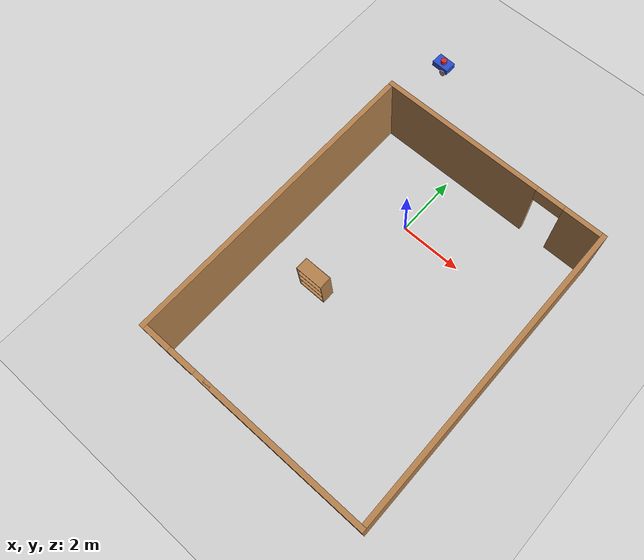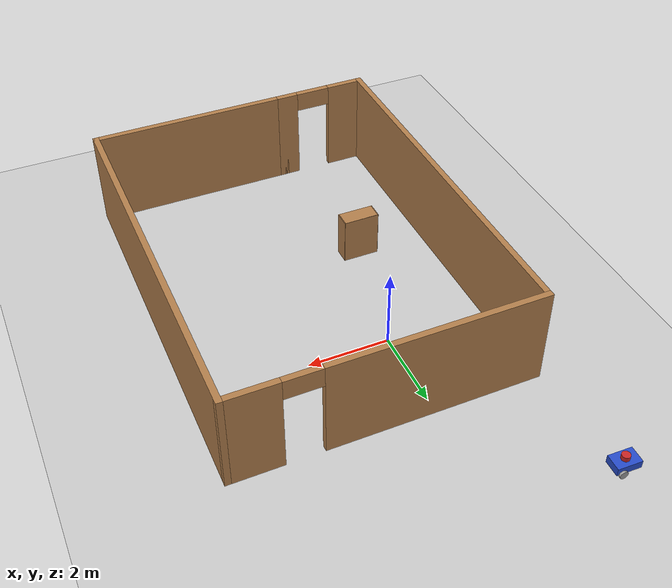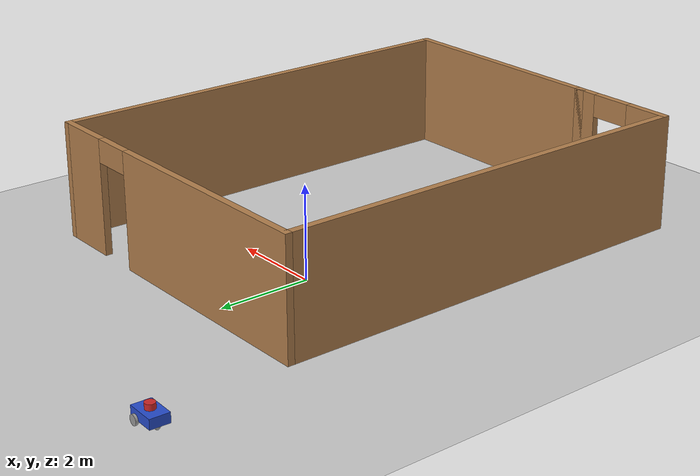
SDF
<sdf version="1.7">
 <world name="default">
  <light name="sun" type="directional">
   <pose>0 0 10 0 -0 0</pose>
   <diffuse>0.8 0.8 0.8 1</diffuse>
   <specular>0.2 0.2 0.2 1</specular>
   <attenuation>
    <range>1000</range>
    <constant>0.9</constant>
    <linear>0.01</linear>
    <quadratic>0.001</quadratic>
   </attenuation>
   <direction>-0.5 0.1 -0.9</direction>
   <spot><inner_angle>0</inner_angle><outer_angle>0</outer_angle><falloff>0</falloff></spot>
  </light>
  <model name="ground_plane">
   <static>1</static>
   <link name="link">
    <collision name="collision">
     <geometry><plane><normal>0 0 1</normal><size>100 100</size></plane></geometry>
     <surface><friction><ode><mu>100</mu><mu2>50</mu2></ode></friction></surface>
    </collision>
    <visual name="visual">
     <cast_shadows>0</cast_shadows>
     <geometry><plane><normal>0 0 1</normal><size>100 100</size></plane></geometry>
     <material>
      <script><uri>file://media/materials/scripts/gazebo.material</uri><name>Gazebo/Grey</name></script>
     </material>
    </visual>
   </link>
  </model>
  <gravity>0 0 -9.8</gravity>
  <magnetic_field>6e-06 2.3e-05 -4.2e-05</magnetic_field>
  <atmosphere type="adiabatic"/>
  <physics type="ode">
   <max_step_size>0.001</max_step_size>
   <real_time_factor>1</real_time_factor>
   <real_time_update_rate>1000</real_time_update_rate>
  </physics>
  <scene><ambient>0.4 0.4 0.4 1</ambient><background>0.7 0.7 0.7 1</background><shadows>1</shadows></scene>
  <audio><device>default</device></audio>
  <spherical_coordinates>
   <surface_model>EARTH_WGS84</surface_model>
   <latitude_deg>0</latitude_deg>
   <longitude_deg>0</longitude_deg>
   <elevation>0</elevation>
   <heading_deg>0</heading_deg>
  </spherical_coordinates>
  <model name="bookshelf">
   <static>1</static>
   <link name="link">
    <inertial><mass>1</mass></inertial>
    <collision name="back">
     <pose>0 0.005 0.6 0 -0 0</pose>
     <geometry><box><size>0.9 0.01 1.2</size></box></geometry>
    </collision>
    <visual name="visual1">
     <pose>0 0.005 0.6 0 -0 0</pose>
     <geometry><box><size>0.9 0.01 1.2</size></box></geometry>
     <material>
      <script><uri>file://media/materials/scripts/gazebo.material</uri><name>Gazebo/Wood</name></script>
     </material>
    </visual>
    <collision name="left_side">
     <pose>0.45 -0.195 0.6 0 -0 0</pose>
     <geometry><box><size>0.02 0.4 1.2</size></box></geometry>
    </collision>
    <visual name="visual2">
     <pose>0.45 -0.195 0.6 0 -0 0</pose>
     <geometry><box><size>0.02 0.4 1.2</size></box></geometry>
     <material>
      <script><uri>file://media/materials/scripts/gazebo.material</uri><name>Gazebo/Wood</name></script>
     </material>
    </visual>
    <collision name="right_side">
     <pose>-0.45 -0.195 0.6 0 -0 0</pose>
     <geometry><box><size>0.02 0.4 1.2</size></box></geometry>
    </collision>
    <visual name="visual3">
     <pose>-0.45 -0.195 0.6 0 -0 0</pose>
     <geometry><box><size>0.02 0.4 1.2</size></box></geometry>
     <material>
      <script><uri>file://media/materials/scripts/gazebo.material</uri><name>Gazebo/Wood</name></script>
     </material>
    </visual>
    <collision name="bottom">
     <pose>0 -0.195 0.03 0 -0 0</pose>
     <geometry><box><size>0.88 0.4 0.06</size></box></geometry>
    </collision>
    <visual name="visual4">
     <pose>0 -0.195 0.03 0 -0 0</pose>
     <geometry><box><size>0.88 0.4 0.06</size></box></geometry>
     <material>
      <script><uri>file://media/materials/scripts/gazebo.material</uri><name>Gazebo/Wood</name></script>
     </material>
    </visual>
    <collision name="top">
     <pose>0 -0.195 1.19 0 -0 0</pose>
     <geometry><box><size>0.88 0.4 0.02</size></box></geometry>
    </collision>
    <visual name="visual5">
     <pose>0 -0.195 1.19 0 -0 0</pose>
     <geometry><box><size>0.88 0.4 0.02</size></box></geometry>
     <material>
      <script><uri>file://media/materials/scripts/gazebo.material</uri><name>Gazebo/Wood</name></script>
     </material>
    </visual>
    <collision name="low_shelf">
     <pose>0 -0.195 0.43 0 -0 0</pose>
     <geometry><box><size>0.88 0.4 0.02</size></box></geometry>
    </collision>
    <visual name="visual6">
     <pose>0 -0.195 0.43 0 -0 0</pose>
     <geometry><box><size>0.88 0.4 0.02</size></box></geometry>
     <material>
      <script><uri>file://media/materials/scripts/gazebo.material</uri><name>Gazebo/Wood</name></script>
     </material>
    </visual>
    <collision name="high_shelf">
     <pose>0 -0.195 0.8 0 -0 0</pose>
     <geometry><box><size>0.88 0.4 0.02</size></box></geometry>
    </collision>
    <visual name="visual7">
     <pose>0 -0.195 0.8 0 -0 0</pose>
     <geometry><box><size>0.88 0.4 0.02</size></box></geometry>
     <material>
      <script><uri>file://media/materials/scripts/gazebo.material</uri><name>Gazebo/Wood</name></script>
     </material>
    </visual>
   </link>
   <pose>-0.686014 -2.96296 0.080918 0 -0 0</pose>
  </model>
  <model name="first_robot">
   <pose>1.10588 -2.46426 0 0 -0 0</pose>
   <link name="Wall_15">
    <collision name="Wall_15_Collision">
     <geometry><box><size>9.75 0.15 2.5</size></box></geometry>
     <pose>0 0 1.25 0 -0 0</pose>
    </collision>
    <visual name="Wall_15_Visual">
     <pose>0 0 1.25 0 -0 0</pose>
     <geometry><box><size>9.75 0.15 2.5</size></box></geometry>
     <material>
      <script><uri>file://media/materials/scripts/gazebo.material</uri><name>Gazebo/Wood</name></script>
      <ambient>1 1 1 1</ambient>
     </material>
     <meta><layer>0</layer></meta>
    </visual>
    <pose>-3.675 -0 0 0 -0 -1.5708</pose>
   </link>
   <link name="Wall_16">
    <pose>-2.5 -4.8 0 0 -0 0</pose>
    <visual name="Wall_16_Visual_0">
     <pose>-0.735127 0 1.25 0 -0 0</pose>
     <geometry><box><size>1.02975 0.15 2.5</size></box></geometry>
     <material>
      <script><uri>file://media/materials/scripts/gazebo.material</uri><name>Gazebo/Wood</name></script>
      <ambient>1 1 1 1</ambient>
     </material>
     <meta><layer>0</layer></meta>
    </visual>
    <collision name="Wall_16_Collision_0">
     <geometry><box><size>1.02975 0.15 2.5</size></box></geometry>
     <pose>-0.735127 0 1.25 0 -0 0</pose>
    </collision>
    <visual name="Wall_16_Visual_1">
     <pose>0.964873 0 1.25 0 -0 0</pose>
     <geometry><box><size>0.570253 0.15 2.5</size></box></geometry>
     <material>
      <script><uri>file://media/materials/scripts/gazebo.material</uri><name>Gazebo/Wood</name></script>
      <ambient>1 1 1 1</ambient>
     </material>
     <meta><layer>0</layer></meta>
    </visual>
    <collision name="Wall_16_Collision_1">
     <geometry><box><size>0.570253 0.15 2.5</size></box></geometry>
     <pose>0.964873 0 1.25 0 -0 0</pose>
    </collision>
    <visual name="Wall_16_Visual_2">
     <pose>0.229747 0 2.25 0 -0 0</pose>
     <geometry><box><size>0.9 0.15 0.5</size></box></geometry>
     <material>
      <script><uri>file://media/materials/scripts/gazebo.material</uri><name>Gazebo/Wood</name></script>
      <ambient>1 1 1 1</ambient>
     </material>
     <meta><layer>0</layer></meta>
    </visual>
    <collision name="Wall_16_Collision_2">
     <geometry><box><size>0.9 0.15 0.5</size></box></geometry>
     <pose>0.229747 0 2.25 0 -0 0</pose>
    </collision>
   </link>
   <link name="Wall_7">
    <collision name="Wall_7_Collision">
     <geometry><box><size>5.25 0.15 2.5</size></box></geometry>
     <pose>0 0 1.25 0 -0 0</pose>
    </collision>
    <visual name="Wall_7_Visual">
     <pose>0 0 1.25 0 -0 0</pose>
     <geometry><box><size>5.25 0.15 2.5</size></box></geometry>
     <material>
      <script><uri>file://media/materials/scripts/gazebo.material</uri><name>Gazebo/Wood</name></script>
      <ambient>1 1 1 1</ambient>
     </material>
     <meta><layer>0</layer></meta>
    </visual>
    <pose>1.125 -4.8 0 0 -0 0</pose>
   </link>
   <link name="Wall_8">
    <collision name="Wall_8_Collision">
     <geometry><box><size>9.75 0.15 2.5</size></box></geometry>
     <pose>0 0 1.25 0 -0 0</pose>
    </collision>
    <visual name="Wall_8_Visual">
     <pose>0 0 1.25 0 -0 0</pose>
     <geometry><box><size>9.75 0.15 2.5</size></box></geometry>
     <material>
      <script><uri>file://media/materials/scripts/gazebo.material</uri><name>Gazebo/Wood</name></script>
      <ambient>1 1 1 1</ambient>
     </material>
     <meta><layer>0</layer></meta>
    </visual>
    <pose>3.675 -0 0 0 -0 1.5708</pose>
   </link>
   <link name="Wall_9">
    <pose>-0 4.8 0 0 -0 3.14159</pose>
    <visual name="Wall_9_Visual_0">
     <pose>-3.0768 0 1.25 0 -0 0</pose>
     <geometry><box><size>1.3464 0.15 2.5</size></box></geometry>
     <material>
      <script><uri>file://media/materials/scripts/gazebo.material</uri><name>Gazebo/Wood</name></script>
      <ambient>1 1 1 1</ambient>
     </material>
     <meta><layer>0</layer></meta>
    </visual>
    <collision name="Wall_9_Collision_0">
     <geometry><box><size>1.3464 0.15 2.5</size></box></geometry>
     <pose>-3.0768 0 1.25 0 -0 0</pose>
    </collision>
    <visual name="Wall_9_Visual_1">
     <pose>1.1232 0 1.25 0 -0 0</pose>
     <geometry><box><size>5.2536 0.15 2.5</size></box></geometry>
     <material>
      <script><uri>file://media/materials/scripts/gazebo.material</uri><name>Gazebo/Wood</name></script>
      <ambient>1 1 1 1</ambient>
     </material>
     <meta><layer>0</layer></meta>
    </visual>
    <collision name="Wall_9_Collision_1">
     <geometry><box><size>5.2536 0.15 2.5</size></box></geometry>
     <pose>1.1232 0 1.25 0 -0 0</pose>
    </collision>
    <visual name="Wall_9_Visual_2">
     <pose>-1.9536 0 2.25 0 -0 0</pose>
     <geometry><box><size>0.9 0.15 0.5</size></box></geometry>
     <material>
      <script><uri>file://media/materials/scripts/gazebo.material</uri><name>Gazebo/Wood</name></script>
      <ambient>1 1 1 1</ambient>
     </material>
     <meta><layer>0</layer></meta>
    </visual>
    <collision name="Wall_9_Collision_2">
     <geometry><box><size>0.9 0.15 0.5</size></box></geometry>
     <pose>-1.9536 0 2.25 0 -0 0</pose>
    </collision>
   </link>
   <static>1</static>
  </model>
  <model name="my_robot">
   <link name="base_footprint">
    <inertial>
     <pose>0.015873 0 0.200794 0 -0 0</pose>
     <mass>6.3</mass>
     <inertia>
      <ixx>0.699753</ixx>
      <ixy>0</ixy>
      <ixz>0.0150794</ixz>
      <iyy>0.922325</iyy>
      <iyz>-1.17843e-18</iyz>
      <izz>0.365586</izz>
     </inertia>
    </inertial>
    <collision name="base_footprint_fixed_joint_lump__base_link_collision">
     <pose>0 0 0.2 0 -0 0</pose>
     <geometry><box><size>0.6 0.4 0.2</size></box></geometry>
    </collision>
    <collision name="base_footprint_fixed_joint_lump__caster_wheel_link_collision_1">
     <pose>0.2 0 0.05 0 -0 0</pose>
     <geometry><sphere><radius>0.05</radius></sphere></geometry>
     <surface><friction><ode><mu>0.1</mu><mu2>0.1</mu2></ode></friction></surface>
    </collision>
    <collision name="base_footprint_fixed_joint_lump__lidar_link_collision_2">
     <pose>0 0 0.3 0 -0 0</pose>
     <geometry><cylinder><length>0.12</length><radius>0.1</radius></cylinder></geometry>
    </collision>
    <visual name="base_footprint_fixed_joint_lump__base_link_visual">
     <pose>0 0 0.2 0 -0 0</pose>
     <geometry><box><size>0.6 0.4 0.2</size></box></geometry>
     <material>
      <script><name>Gazebo/Blue</name><uri>file://media/materials/scripts/gazebo.material</uri></script>
     </material>
    </visual>
    <visual name="base_footprint_fixed_joint_lump__caster_wheel_link_visual_1">
     <pose>0.2 0 0.05 0 -0 0</pose>
     <geometry><sphere><radius>0.05</radius></sphere></geometry>
     <material>
      <script><name>Gazebo/Grey</name><uri>file://media/materials/scripts/gazebo.material</uri></script>
     </material>
    </visual>
    <visual name="base_footprint_fixed_joint_lump__lidar_link_visual_2">
     <pose>0 0 0.36 0 -0 0</pose>
     <geometry><cylinder><length>0.12</length><radius>0.1</radius></cylinder></geometry>
     <material>
      <script><name>Gazebo/Red</name><uri>file://media/materials/scripts/gazebo.material</uri></script>
     </material>
    </visual>
    <sensor name="VLP16" type="ray">
     <visualize>0</visualize>
     <update_rate>10</update_rate>
     <ray>
      <scan>
       <horizontal>
        <samples>360</samples>
        <resolution>1</resolution>
        <min_angle>-3.14159</min_angle>
        <max_angle>3.14159</max_angle>
       </horizontal>
       <vertical>
        <samples>16</samples>
        <resolution>1</resolution>
        <min_angle>-0.261799</min_angle>
        <max_angle>0.261799</max_angle>
       </vertical>
      </scan>
      <range><min>1</min><max>140</max><resolution>0.001</resolution></range>
      <noise><type>gaussian</type><mean>0</mean><stddev>0</stddev></noise>
     </ray>
     <plugin name="my_ray_sensor_plugin" filename="libgazebo_ros_ray_sensor.so">
      <ros><namespace>/ray</namespace><remapping>~/out:=pointcloud2</remapping></ros>
      <output_type>sensor_msgs/PointCloud2</output_type>
      <min_intensity>100.0</min_intensity>
      <frame_name>lidar_link</frame_name>
     </plugin>
     <pose>0 0 0.3 0 -0 0</pose>
    </sensor>
   </link>
   <joint name="base_left_wheel_joint" type="revolute">
    <pose relative_to="base_footprint">-0.15 0.225 0.1 0 -0 0</pose>
    <parent>base_footprint</parent>
    <child>left_wheel_link</child>
    <axis>
     <xyz>0 1 0</xyz>
     <limit><lower>-1e+16</lower><upper>1e+16</upper></limit>
     <dynamics><spring_reference>0</spring_reference><spring_stiffness>0</spring_stiffness></dynamics>
    </axis>
   </joint>
   <link name="left_wheel_link">
    <pose relative_to="base_left_wheel_joint">0 0 0 0 -0 0</pose>
    <inertial>
     <pose>0 0 0 1.5708 -0 0</pose>
     <mass>1</mass>
     <inertia><ixx>0.0108333</ixx><ixy>0</ixy><ixz>0</ixz><iyy>0.0108333</iyy><iyz>0</iyz><izz>0.02</izz></inertia>
    </inertial>
    <collision name="left_wheel_link_collision">
     <pose>0 0 0 1.5708 -0 0</pose>
     <geometry><cylinder><length>0.05</length><radius>0.1</radius></cylinder></geometry>
    </collision>
    <visual name="left_wheel_link_visual">
     <pose>0 0 0 1.5708 -0 0</pose>
     <geometry><cylinder><length>0.05</length><radius>0.1</radius></cylinder></geometry>
     <material>
      <script><name>Gazebo/Grey</name><uri>file://media/materials/scripts/gazebo.material</uri></script>
     </material>
    </visual>
   </link>
   <joint name="base_right_wheel_joint" type="revolute">
    <pose relative_to="base_footprint">-0.15 -0.225 0.1 0 -0 0</pose>
    <parent>base_footprint</parent>
    <child>right_wheel_link</child>
    <axis>
     <xyz>0 1 0</xyz>
     <limit><lower>-1e+16</lower><upper>1e+16</upper></limit>
     <dynamics><spring_reference>0</spring_reference><spring_stiffness>0</spring_stiffness></dynamics>
    </axis>
   </joint>
   <link name="right_wheel_link">
    <pose relative_to="base_right_wheel_joint">0 0 0 0 -0 0</pose>
    <inertial>
     <pose>0 0 0 1.5708 -0 0</pose>
     <mass>1</mass>
     <inertia><ixx>0.0108333</ixx><ixy>0</ixy><ixz>0</ixz><iyy>0.0108333</iyy><iyz>0</iyz><izz>0.02</izz></inertia>
    </inertial>
    <collision name="right_wheel_link_collision">
     <pose>0 0 0 1.5708 -0 0</pose>
     <geometry><cylinder><length>0.05</length><radius>0.1</radius></cylinder></geometry>
    </collision>
    <visual name="right_wheel_link_visual">
     <pose>0 0 0 1.5708 -0 0</pose>
     <geometry><cylinder><length>0.05</length><radius>0.1</radius></cylinder></geometry>
     <material>
      <script><name>Gazebo/Grey</name><uri>file://media/materials/scripts/gazebo.material</uri></script>
     </material>
    </visual>
   </link>
   <static>0</static>
   <plugin name="diff_drive_controller" filename="libgazebo_ros_diff_drive.so">
    <update_rate>50</update_rate>
    <left_joint>base_left_wheel_joint</left_joint>
    <right_joint>base_right_wheel_joint</right_joint>
    <wheel_separation>0.45</wheel_separation>
    <wheel_diameter>0.2</wheel_diameter>
    <publish_odom>1</publish_odom>
    <publish_odom_tf>1</publish_odom_tf>
    <publish_wheel_tf>1</publish_wheel_tf>
    <odometry_topic>odom</odometry_topic>
    <odometry_frame>odom</odometry_frame>
    <robot_base_frame>base_footprint</robot_base_frame>
   </plugin>
   <pose>-2.82622 5.29025 0 0 -0 3.10757</pose>
  </model>
 </world>
</sdf>
